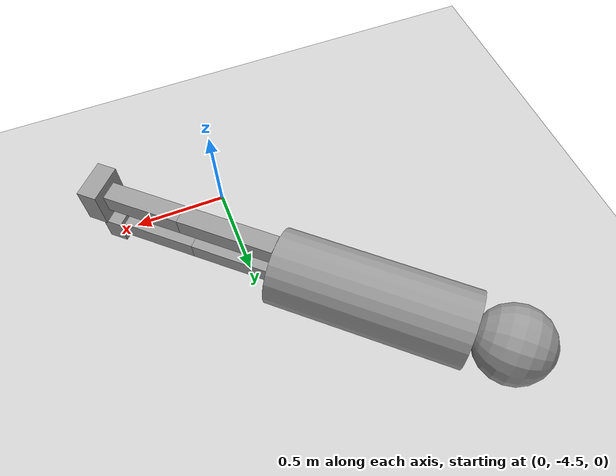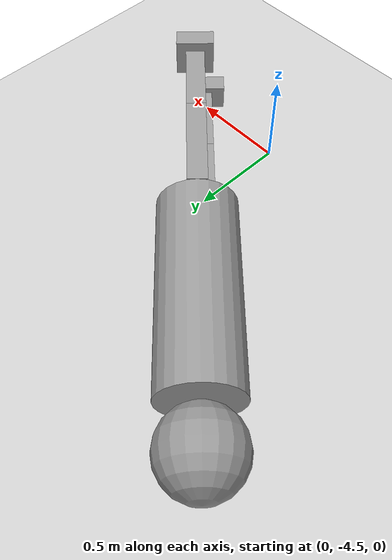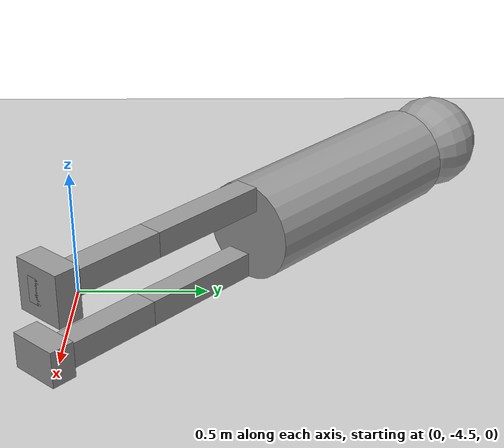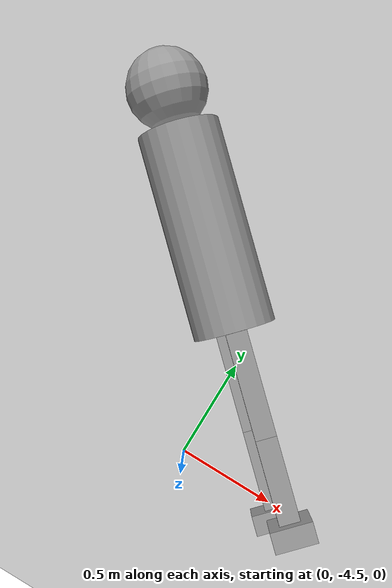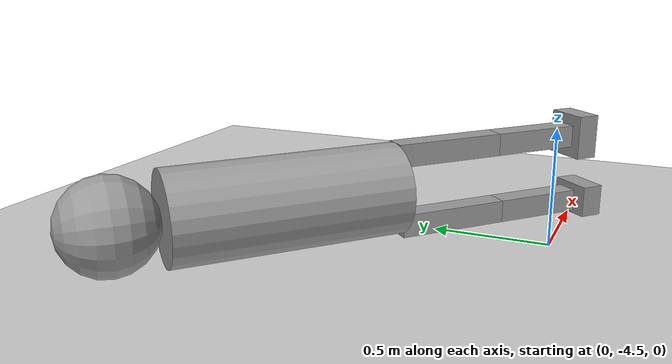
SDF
<sdf version="1.6">
 <world name="default">
  <model name="ground_plane">
   <static>1</static>
   <link name="link">
    <collision name="collision">
     <geometry><plane><normal>0 0 1</normal><size>100 100</size></plane></geometry>
     <surface><friction><ode><mu>100</mu><mu2>50</mu2></ode></friction></surface>
    </collision>
    <visual name="visual">
     <cast_shadows>0</cast_shadows>
     <geometry><plane><normal>0 0 1</normal><size>100 100</size></plane></geometry>
     <material>
      <script><uri>file://media/materials/scripts/gazebo.material</uri><name>Gazebo/Grey</name></script>
     </material>
    </visual>
   </link>
  </model>
  <model name="humanoid_1_0">
   <link name="link_0">
    <pose>0.0025 0.019375 0.775 0 -0 0</pose>
    <inertial>
     <mass>1</mass>
     <inertia><ixx>0.145833</ixx><ixy>0</ixy><ixz>0</ixz><iyy>0.145833</iyy><iyz>0</iyz><izz>0.125</izz></inertia>
    </inertial>
    <visual name="visual">
     <geometry><cylinder><radius>0.2</radius><length>1</length></cylinder></geometry>
     <material>
      <lighting>1</lighting>
      <script><uri>file://media/materials/scripts/gazebo.material</uri><name>Gazebo/Grey</name></script>
      <shader type="pixel"><normal_map>__default__</normal_map></shader>
      <ambient>0.3 0.3 0.3 1</ambient>
      <diffuse>0.7 0.7 0.7 1</diffuse>
      <specular>0.01 0.01 0.01 1</specular>
      <emissive>0 0 0 1</emissive>
     </material>
    </visual>
    <collision name="collision">
     <geometry><cylinder><radius>0.2</radius><length>1</length></cylinder></geometry>
     <surface>
      <friction>
       <ode><mu>1</mu><mu2>1</mu2><fdir1>0 0 0</fdir1><slip1>0</slip1><slip2>0</slip2></ode>
       <torsional>
        <coefficient>1</coefficient>
        <patch_radius>0</patch_radius>
        <surface_radius>0</surface_radius>
        <use_patch_radius>1</use_patch_radius>
        <ode><slip>0</slip></ode>
       </torsional>
      </friction>
      <bounce><restitution_coefficient>0</restitution_coefficient><threshold>1e+06</threshold></bounce>
      <contact>
       <collide_without_contact>0</collide_without_contact>
       <collide_without_contact_bitmask>1</collide_without_contact_bitmask>
       <collide_bitmask>1</collide_bitmask>
       <ode>
        <soft_cfm>0</soft_cfm>
        <soft_erp>0.2</soft_erp>
        <kp>1e+13</kp>
        <kd>1</kd>
        <max_vel>0.01</max_vel>
        <min_depth>0</min_depth>
       </ode>
       <bullet>
        <split_impulse>1</split_impulse>
        <split_impulse_penetration_threshold>-0.01</split_impulse_penetration_threshold>
        <soft_cfm>0</soft_cfm>
        <soft_erp>0.2</soft_erp>
        <kp>1e+13</kp>
        <kd>1</kd>
       </bullet>
      </contact>
     </surface>
    </collision>
   </link>
   <link name="link_2">
    <pose>0.0025 0.019375 1.475 0 -0 0</pose>
    <inertial>
     <mass>1</mass>
     <inertia><ixx>0.1</ixx><ixy>0</ixy><ixz>0</ixz><iyy>0.1</iyy><iyz>0</iyz><izz>0.1</izz></inertia>
    </inertial>
    <visual name="visual">
     <geometry><sphere><radius>0.2</radius></sphere></geometry>
     <material>
      <lighting>1</lighting>
      <script><uri>file://media/materials/scripts/gazebo.material</uri><name>Gazebo/Grey</name></script>
      <shader type="pixel"><normal_map>__default__</normal_map></shader>
      <ambient>0.3 0.3 0.3 1</ambient>
      <diffuse>0.7 0.7 0.7 1</diffuse>
      <specular>0.01 0.01 0.01 1</specular>
      <emissive>0 0 0 1</emissive>
     </material>
    </visual>
    <collision name="collision">
     <geometry><sphere><radius>0.2</radius></sphere></geometry>
     <surface>
      <friction>
       <ode><mu>1</mu><mu2>1</mu2><fdir1>0 0 0</fdir1><slip1>0</slip1><slip2>0</slip2></ode>
       <torsional>
        <coefficient>1</coefficient>
        <patch_radius>0</patch_radius>
        <surface_radius>0</surface_radius>
        <use_patch_radius>1</use_patch_radius>
        <ode><slip>0</slip></ode>
       </torsional>
      </friction>
      <bounce><restitution_coefficient>0</restitution_coefficient><threshold>1e+06</threshold></bounce>
      <contact>
       <collide_without_contact>0</collide_without_contact>
       <collide_without_contact_bitmask>1</collide_without_contact_bitmask>
       <collide_bitmask>1</collide_bitmask>
       <ode>
        <soft_cfm>0</soft_cfm>
        <soft_erp>0.2</soft_erp>
        <kp>1e+13</kp>
        <kd>1</kd>
        <max_vel>0.01</max_vel>
        <min_depth>0</min_depth>
       </ode>
       <bullet>
        <split_impulse>1</split_impulse>
        <split_impulse_penetration_threshold>-0.01</split_impulse_penetration_threshold>
        <soft_cfm>0</soft_cfm>
        <soft_erp>0.2</soft_erp>
        <kp>1e+13</kp>
        <kd>1</kd>
       </bullet>
      </contact>
     </surface>
    </collision>
   </link>
   <link name="link_4">
    <pose>-0.1475 -0.025625 0.025 0 -0 0</pose>
    <inertial>
     <mass>1</mass>
     <inertia>
      <ixx>0.166667</ixx>
      <ixy>0</ixy>
      <ixz>0</ixz>
      <iyy>0.166667</iyy>
      <iyz>0</iyz>
      <izz>0.166667</izz>
     </inertia>
    </inertial>
    <visual name="visual">
     <geometry><box><size>0.1 0.1 0.5</size></box></geometry>
     <material>
      <lighting>1</lighting>
      <script><uri>file://media/materials/scripts/gazebo.material</uri><name>Gazebo/Grey</name></script>
      <shader type="pixel"><normal_map>__default__</normal_map></shader>
      <ambient>0.3 0.3 0.3 1</ambient>
      <diffuse>0.7 0.7 0.7 1</diffuse>
      <specular>0.01 0.01 0.01 1</specular>
      <emissive>0 0 0 1</emissive>
     </material>
    </visual>
    <collision name="collision">
     <geometry><box><size>0.1 0.1 0.5</size></box></geometry>
     <surface>
      <friction>
       <ode><mu>1</mu><mu2>1</mu2><fdir1>0 0 0</fdir1><slip1>0</slip1><slip2>0</slip2></ode>
       <torsional>
        <coefficient>1</coefficient>
        <patch_radius>0</patch_radius>
        <surface_radius>0</surface_radius>
        <use_patch_radius>1</use_patch_radius>
        <ode><slip>0</slip></ode>
       </torsional>
      </friction>
      <bounce><restitution_coefficient>0</restitution_coefficient><threshold>1e+06</threshold></bounce>
      <contact>
       <collide_without_contact>0</collide_without_contact>
       <collide_without_contact_bitmask>1</collide_without_contact_bitmask>
       <collide_bitmask>1</collide_bitmask>
       <ode>
        <soft_cfm>0</soft_cfm>
        <soft_erp>0.2</soft_erp>
        <kp>1e+13</kp>
        <kd>1</kd>
        <max_vel>0.01</max_vel>
        <min_depth>0</min_depth>
       </ode>
       <bullet>
        <split_impulse>1</split_impulse>
        <split_impulse_penetration_threshold>-0.01</split_impulse_penetration_threshold>
        <soft_cfm>0</soft_cfm>
        <soft_erp>0.2</soft_erp>
        <kp>1e+13</kp>
        <kd>1</kd>
       </bullet>
      </contact>
     </surface>
    </collision>
   </link>
   <link name="link_4_clone">
    <pose>-0.1475 -0.025625 -0.475 0 -0 0</pose>
    <inertial>
     <mass>1</mass>
     <inertia>
      <ixx>0.166667</ixx>
      <ixy>0</ixy>
      <ixz>0</ixz>
      <iyy>0.166667</iyy>
      <iyz>0</iyz>
      <izz>0.166667</izz>
     </inertia>
    </inertial>
    <visual name="visual">
     <geometry><box><size>0.1 0.1 0.5</size></box></geometry>
     <material>
      <lighting>1</lighting>
      <script><uri>file://media/materials/scripts/gazebo.material</uri><name>Gazebo/Grey</name></script>
      <shader type="pixel"><normal_map>__default__</normal_map></shader>
      <ambient>0.3 0.3 0.3 1</ambient>
      <diffuse>0.7 0.7 0.7 1</diffuse>
      <specular>0.01 0.01 0.01 1</specular>
      <emissive>0 0 0 1</emissive>
     </material>
    </visual>
    <collision name="collision">
     <geometry><box><size>0.1 0.1 0.5</size></box></geometry>
     <surface>
      <friction>
       <ode><mu>1</mu><mu2>1</mu2><fdir1>0 0 0</fdir1><slip1>0</slip1><slip2>0</slip2></ode>
       <torsional>
        <coefficient>1</coefficient>
        <patch_radius>0</patch_radius>
        <surface_radius>0</surface_radius>
        <use_patch_radius>1</use_patch_radius>
        <ode><slip>0</slip></ode>
       </torsional>
      </friction>
      <bounce><restitution_coefficient>0</restitution_coefficient><threshold>1e+06</threshold></bounce>
      <contact>
       <collide_without_contact>0</collide_without_contact>
       <collide_without_contact_bitmask>1</collide_without_contact_bitmask>
       <collide_bitmask>1</collide_bitmask>
       <ode>
        <soft_cfm>0</soft_cfm>
        <soft_erp>0.2</soft_erp>
        <kp>1e+13</kp>
        <kd>1</kd>
        <max_vel>0.01</max_vel>
        <min_depth>0</min_depth>
       </ode>
       <bullet>
        <split_impulse>1</split_impulse>
        <split_impulse_penetration_threshold>-0.01</split_impulse_penetration_threshold>
        <soft_cfm>0</soft_cfm>
        <soft_erp>0.2</soft_erp>
        <kp>1e+13</kp>
        <kd>1</kd>
       </bullet>
      </contact>
     </surface>
    </collision>
   </link>
   <link name="link_4_clone_0">
    <pose>0.1525 0.019375 0.025 0 -0 0</pose>
    <inertial>
     <mass>1</mass>
     <inertia>
      <ixx>0.166667</ixx>
      <ixy>0</ixy>
      <ixz>0</ixz>
      <iyy>0.166667</iyy>
      <iyz>0</iyz>
      <izz>0.166667</izz>
     </inertia>
    </inertial>
    <visual name="visual">
     <geometry><box><size>0.1 0.1 0.5</size></box></geometry>
     <material>
      <lighting>1</lighting>
      <script><uri>file://media/materials/scripts/gazebo.material</uri><name>Gazebo/Grey</name></script>
      <shader type="pixel"><normal_map>__default__</normal_map></shader>
      <ambient>0.3 0.3 0.3 1</ambient>
      <diffuse>0.7 0.7 0.7 1</diffuse>
      <specular>0.01 0.01 0.01 1</specular>
      <emissive>0 0 0 1</emissive>
     </material>
    </visual>
    <collision name="collision">
     <geometry><box><size>0.1 0.1 0.5</size></box></geometry>
     <surface>
      <friction>
       <ode><mu>1</mu><mu2>1</mu2><fdir1>0 0 0</fdir1><slip1>0</slip1><slip2>0</slip2></ode>
       <torsional>
        <coefficient>1</coefficient>
        <patch_radius>0</patch_radius>
        <surface_radius>0</surface_radius>
        <use_patch_radius>1</use_patch_radius>
        <ode><slip>0</slip></ode>
       </torsional>
      </friction>
      <bounce><restitution_coefficient>0</restitution_coefficient><threshold>1e+06</threshold></bounce>
      <contact>
       <collide_without_contact>0</collide_without_contact>
       <collide_without_contact_bitmask>1</collide_without_contact_bitmask>
       <collide_bitmask>1</collide_bitmask>
       <ode>
        <soft_cfm>0</soft_cfm>
        <soft_erp>0.2</soft_erp>
        <kp>1e+13</kp>
        <kd>1</kd>
        <max_vel>0.01</max_vel>
        <min_depth>0</min_depth>
       </ode>
       <bullet>
        <split_impulse>1</split_impulse>
        <split_impulse_penetration_threshold>-0.01</split_impulse_penetration_threshold>
        <soft_cfm>0</soft_cfm>
        <soft_erp>0.2</soft_erp>
        <kp>1e+13</kp>
        <kd>1</kd>
       </bullet>
      </contact>
     </surface>
    </collision>
   </link>
   <link name="link_4_clone_1">
    <pose>0.1525 0.019375 -0.475 0 -0 0</pose>
    <inertial>
     <mass>1</mass>
     <inertia>
      <ixx>0.166667</ixx>
      <ixy>0</ixy>
      <ixz>0</ixz>
      <iyy>0.166667</iyy>
      <iyz>0</iyz>
      <izz>0.166667</izz>
     </inertia>
    </inertial>
    <visual name="visual">
     <geometry><box><size>0.1 0.1 0.5</size></box></geometry>
     <material>
      <lighting>1</lighting>
      <script><uri>file://media/materials/scripts/gazebo.material</uri><name>Gazebo/Grey</name></script>
      <shader type="pixel"><normal_map>__default__</normal_map></shader>
      <ambient>0.3 0.3 0.3 1</ambient>
      <diffuse>0.7 0.7 0.7 1</diffuse>
      <specular>0.01 0.01 0.01 1</specular>
      <emissive>0 0 0 1</emissive>
     </material>
    </visual>
    <collision name="collision">
     <geometry><box><size>0.1 0.1 0.5</size></box></geometry>
     <surface>
      <friction>
       <ode><mu>1</mu><mu2>1</mu2><fdir1>0 0 0</fdir1><slip1>0</slip1><slip2>0</slip2></ode>
       <torsional>
        <coefficient>1</coefficient>
        <patch_radius>0</patch_radius>
        <surface_radius>0</surface_radius>
        <use_patch_radius>1</use_patch_radius>
        <ode><slip>0</slip></ode>
       </torsional>
      </friction>
      <bounce><restitution_coefficient>0</restitution_coefficient><threshold>1e+06</threshold></bounce>
      <contact>
       <collide_without_contact>0</collide_without_contact>
       <collide_without_contact_bitmask>1</collide_without_contact_bitmask>
       <collide_bitmask>1</collide_bitmask>
       <ode>
        <soft_cfm>0</soft_cfm>
        <soft_erp>0.2</soft_erp>
        <kp>1e+13</kp>
        <kd>1</kd>
        <max_vel>0.01</max_vel>
        <min_depth>0</min_depth>
       </ode>
       <bullet>
        <split_impulse>1</split_impulse>
        <split_impulse_penetration_threshold>-0.01</split_impulse_penetration_threshold>
        <soft_cfm>0</soft_cfm>
        <soft_erp>0.2</soft_erp>
        <kp>1e+13</kp>
        <kd>1</kd>
       </bullet>
      </contact>
     </surface>
    </collision>
   </link>
   <link name="link_5">
    <pose>-0.1675 -0.045625 -0.675 0 -0 0</pose>
    <inertial>
     <mass>1</mass>
     <inertia>
      <ixx>0.166667</ixx>
      <ixy>0</ixy>
      <ixz>0</ixz>
      <iyy>0.166667</iyy>
      <iyz>0</iyz>
      <izz>0.166667</izz>
     </inertia>
    </inertial>
    <visual name="visual">
     <geometry><box><size>0.2 0.2 0.1</size></box></geometry>
     <material>
      <lighting>1</lighting>
      <script><uri>file://media/materials/scripts/gazebo.material</uri><name>Gazebo/Grey</name></script>
      <shader type="pixel"><normal_map>__default__</normal_map></shader>
      <ambient>0.3 0.3 0.3 1</ambient>
      <diffuse>0.7 0.7 0.7 1</diffuse>
      <specular>0.01 0.01 0.01 1</specular>
      <emissive>0 0 0 1</emissive>
     </material>
    </visual>
    <collision name="collision">
     <geometry><box><size>0.2 0.2 0.1</size></box></geometry>
     <surface>
      <friction>
       <ode><mu>1</mu><mu2>1</mu2><fdir1>0 0 0</fdir1><slip1>0</slip1><slip2>0</slip2></ode>
       <torsional>
        <coefficient>1</coefficient>
        <patch_radius>0</patch_radius>
        <surface_radius>0</surface_radius>
        <use_patch_radius>1</use_patch_radius>
        <ode><slip>0</slip></ode>
       </torsional>
      </friction>
      <bounce><restitution_coefficient>0</restitution_coefficient><threshold>1e+06</threshold></bounce>
      <contact>
       <collide_without_contact>0</collide_without_contact>
       <collide_without_contact_bitmask>1</collide_without_contact_bitmask>
       <collide_bitmask>1</collide_bitmask>
       <ode>
        <soft_cfm>0</soft_cfm>
        <soft_erp>0.2</soft_erp>
        <kp>1e+13</kp>
        <kd>1</kd>
        <max_vel>0.01</max_vel>
        <min_depth>0</min_depth>
       </ode>
       <bullet>
        <split_impulse>1</split_impulse>
        <split_impulse_penetration_threshold>-0.01</split_impulse_penetration_threshold>
        <soft_cfm>0</soft_cfm>
        <soft_erp>0.2</soft_erp>
        <kp>1e+13</kp>
        <kd>1</kd>
       </bullet>
      </contact>
     </surface>
    </collision>
   </link>
   <link name="link_5_clone">
    <pose>0.1525 0.019375 -0.675 0 -0 0</pose>
    <inertial>
     <mass>1</mass>
     <inertia>
      <ixx>0.166667</ixx>
      <ixy>0</ixy>
      <ixz>0</ixz>
      <iyy>0.166667</iyy>
      <iyz>0</iyz>
      <izz>0.166667</izz>
     </inertia>
    </inertial>
    <visual name="visual">
     <geometry><box><size>0.2 0.2 0.1</size></box></geometry>
     <material>
      <lighting>1</lighting>
      <script><uri>file://media/materials/scripts/gazebo.material</uri><name>Gazebo/Grey</name></script>
      <shader type="pixel"><normal_map>__default__</normal_map></shader>
      <ambient>0.3 0.3 0.3 1</ambient>
      <diffuse>0.7 0.7 0.7 1</diffuse>
      <specular>0.01 0.01 0.01 1</specular>
      <emissive>0 0 0 1</emissive>
     </material>
    </visual>
    <collision name="collision">
     <geometry><box><size>0.2 0.2 0.1</size></box></geometry>
     <surface>
      <friction>
       <ode><mu>1</mu><mu2>1</mu2><fdir1>0 0 0</fdir1><slip1>0</slip1><slip2>0</slip2></ode>
       <torsional>
        <coefficient>1</coefficient>
        <patch_radius>0</patch_radius>
        <surface_radius>0</surface_radius>
        <use_patch_radius>1</use_patch_radius>
        <ode><slip>0</slip></ode>
       </torsional>
      </friction>
      <bounce><restitution_coefficient>0</restitution_coefficient><threshold>1e+06</threshold></bounce>
      <contact>
       <collide_without_contact>0</collide_without_contact>
       <collide_without_contact_bitmask>1</collide_without_contact_bitmask>
       <collide_bitmask>1</collide_bitmask>
       <ode>
        <soft_cfm>0</soft_cfm>
        <soft_erp>0.2</soft_erp>
        <kp>1e+13</kp>
        <kd>1</kd>
        <max_vel>0.01</max_vel>
        <min_depth>0</min_depth>
       </ode>
       <bullet>
        <split_impulse>1</split_impulse>
        <split_impulse_penetration_threshold>-0.01</split_impulse_penetration_threshold>
        <soft_cfm>0</soft_cfm>
        <soft_erp>0.2</soft_erp>
        <kp>1e+13</kp>
        <kd>1</kd>
       </bullet>
      </contact>
     </surface>
    </collision>
   </link>
   <joint name="link_0_JOINT_0" type="fixed">
    <parent>link_0</parent>
    <child>link_2</child>
    <physics>
     <ode><limit><cfm>0</cfm><erp>0.2</erp></limit><suspension><cfm>0</cfm><erp>0.2</erp></suspension></ode>
    </physics>
   </joint>
   <joint name="link_0_JOINT_1" type="revolute2">
    <parent>link_0</parent>
    <child>link_4</child>
    <axis>
     <xyz>1 0 0</xyz>
     <use_parent_model_frame>0</use_parent_model_frame>
     <limit>
      <lower>-1.79769e+308</lower>
      <upper>1.79769e+308</upper>
      <effort>-1</effort>
      <velocity>-1</velocity>
     </limit>
     <dynamics>
      <spring_reference>0</spring_reference>
      <spring_stiffness>0</spring_stiffness>
      <damping>0</damping>
     </dynamics>
    </axis>
    <axis2>
     <xyz>0 1 0</xyz>
     <use_parent_model_frame>0</use_parent_model_frame>
     <dynamics>
      <spring_reference>0</spring_reference>
      <spring_stiffness>0</spring_stiffness>
      <damping>0</damping>
     </dynamics>
     <limit>
      <lower>-1.79769e+308</lower>
      <upper>1.79769e+308</upper>
      <effort>-1</effort>
      <velocity>-1</velocity>
     </limit>
    </axis2>
    <physics>
     <ode><limit><cfm>0</cfm><erp>0.2</erp></limit><suspension><cfm>0</cfm><erp>0.2</erp></suspension></ode>
    </physics>
   </joint>
   <joint name="link_0_JOINT_3" type="revolute2">
    <parent>link_0</parent>
    <child>link_4_clone_0</child>
    <axis>
     <xyz>1 0 0</xyz>
     <use_parent_model_frame>0</use_parent_model_frame>
     <limit>
      <lower>-1.79769e+308</lower>
      <upper>1.79769e+308</upper>
      <effort>-1</effort>
      <velocity>-1</velocity>
     </limit>
     <dynamics>
      <spring_reference>0</spring_reference>
      <spring_stiffness>0</spring_stiffness>
      <damping>0</damping>
     </dynamics>
    </axis>
    <axis2>
     <xyz>0 1 0</xyz>
     <use_parent_model_frame>0</use_parent_model_frame>
     <dynamics>
      <spring_reference>0</spring_reference>
      <spring_stiffness>0</spring_stiffness>
      <damping>0</damping>
     </dynamics>
     <limit>
      <lower>-1.79769e+308</lower>
      <upper>1.79769e+308</upper>
      <effort>-1</effort>
      <velocity>-1</velocity>
     </limit>
    </axis2>
    <physics>
     <ode><limit><cfm>0</cfm><erp>0.2</erp></limit><suspension><cfm>0</cfm><erp>0.2</erp></suspension></ode>
    </physics>
   </joint>
   <joint name="link_4_JOINT_2" type="revolute">
    <parent>link_4</parent>
    <child>link_4_clone</child>
    <axis>
     <xyz>0 1 0</xyz>
     <use_parent_model_frame>0</use_parent_model_frame>
     <limit>
      <lower>-1.79769e+308</lower>
      <upper>1.79769e+308</upper>
      <effort>-1</effort>
      <velocity>-1</velocity>
     </limit>
     <dynamics>
      <spring_reference>0</spring_reference>
      <spring_stiffness>0</spring_stiffness>
      <damping>0</damping>
     </dynamics>
    </axis>
    <physics>
     <ode><limit><cfm>0</cfm><erp>0.2</erp></limit><suspension><cfm>0</cfm><erp>0.2</erp></suspension></ode>
    </physics>
   </joint>
   <joint name="link_4_clone_0_JOINT_4" type="revolute">
    <parent>link_4_clone_0</parent>
    <child>link_4_clone_1</child>
    <axis>
     <xyz>0 1 0</xyz>
     <use_parent_model_frame>0</use_parent_model_frame>
     <limit>
      <lower>-1.79769e+308</lower>
      <upper>1.79769e+308</upper>
      <effort>-1</effort>
      <velocity>-1</velocity>
     </limit>
     <dynamics>
      <spring_reference>0</spring_reference>
      <spring_stiffness>0</spring_stiffness>
      <damping>0</damping>
     </dynamics>
    </axis>
    <physics>
     <ode><limit><cfm>0</cfm><erp>0.2</erp></limit><suspension><cfm>0</cfm><erp>0.2</erp></suspension></ode>
    </physics>
   </joint>
   <joint name="link_4_clone_1_JOINT_6" type="fixed">
    <parent>link_4_clone_1</parent>
    <child>link_5_clone</child>
    <physics>
     <ode><limit><cfm>0</cfm><erp>0.2</erp></limit><suspension><cfm>0</cfm><erp>0.2</erp></suspension></ode>
    </physics>
   </joint>
   <joint name="link_4_clone_JOINT_5" type="fixed">
    <parent>link_4_clone</parent>
    <child>link_5</child>
    <physics>
     <ode><limit><cfm>0</cfm><erp>0.2</erp></limit><suspension><cfm>0</cfm><erp>0.2</erp></suspension></ode>
    </physics>
   </joint>
   <static>0</static>
   <pose>0.077697 -4.04674 0.20387 2.47613 -1.56524 3.06398</pose>
  </model>
 </world>
</sdf>
